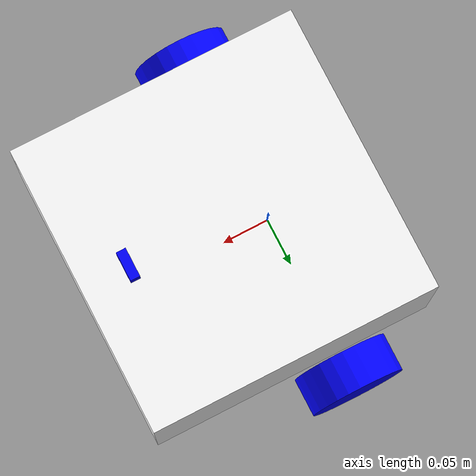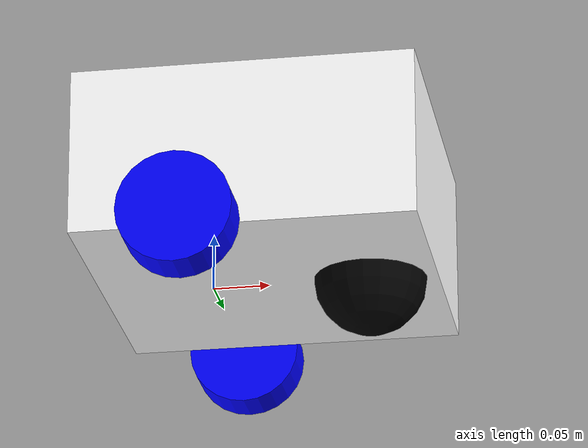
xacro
<?xml version="1.0"?>
<robot xmlns:xacro="http://www.ros.org/wiki/xacro" name="robot">

    <!-- Declare arguments -->
    <xacro:arg name="use_ros2_control" default="true"/>

    <!-- Include required files with correct filenames -->
    <xacro:include filename="robot_core.xacro"/>
    <xacro:include filename="gazebo_control.xacro"/>
    <xacro:include filename="camera.xacro"/>
    <xacro:include filename="inertial_macros.xacro"/>

</robot>

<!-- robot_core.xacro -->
<robot xmlns:xacro="http://www.ros.org/wiki/xacro">

    <xacro:include filename="inertial_macros.xacro"/>
     <material name="white">
        <color rgba="1 1 1 1"/>
     </material>

     <material name="orange">
        <color rgba="1 0.3 0.1 1"/>
     </material>

     <material name="blue">
        <color rgba="0 0 1 1"/>
     </material>

     <material name="black">
        <color rgba="0 0 0 1"/>
     </material>

     <material name="red">
        <color rgba="1.0 0.0 0.0 1.0"/>
     </material>

    <!--BASE LINK-->
     <link name= "base_link">

     </link>

     <joint name="base_footprint_joint" type="fixed">
        <parent link="base_link"/>
        <child link="base_footprint"/>
        <origin xyz="0 0 0" rpy="0 0 0"/>

    </joint>

    <link name="base_footprint">
    </link>

     <joint name="chasis_joint" type="fixed">
        <parent link="base_link"/>
        <child link="chasis"/>
        <origin xyz="-0.1 0 0"/>
     </joint>

     <link name="chasis">
        <visual>
            <origin xyz="0.15 0 0.075"/>
            <geometry>
                <box size="0.3 0.3 0.15"/>
            </geometry>
            <material name="white"/>
        </visual>
        <collision>
            <origin xyz="0.15 0 0.075"/>
            <geometry>
                <box size="0.3 0.3 0.15"/>
            </geometry>

        </collision>
        <xacro:inertial_box mass="0.5" x="0.3" y="0.3" z="0.15">
            <origin xyz="0.15 0 0.075" rpy="0 0 0"/>
        </xacro:inertial_box>
     </link>

     <gazebo reference="chasis">
        <material>Gazebo/white</material>
     </gazebo>

     <!--LEFT WHEEL LINK-->

     <joint name="left_wheel_joint" type="continuous">
        <parent link="base_link"/>
        <child link="left_wheel"/>
        <origin xyz="0 0.175 0" rpy="-${pi/2} 0 0"/>
        <axis xyz="0 0 1"/>
     </joint>

     <link name="left_wheel">
        <visual>
            <geometry>
                <cylinder radius="0.05" length="0.04"/>
            </geometry>
            <material name="blue"/>
        </visual>
        <collision>
            <geometry>
                <sphere radius="0.05"/>
            </geometry>
        </collision>
        <xacro:inertial_cylinder mass="0.1" length="0.04" radius="0.05">
            <origin xyz="0 0 0" rpy="0 0 0"/>
        </xacro:inertial_cylinder>

     </link>

     <gazebo reference="left_wheel">
        <material>Gazebo/Blue</material>
     </gazebo>

     <!--right WHEEL LINK-->

     <joint name="right_wheel_joint" type="continuous">
        <parent link="base_link"/>
        <child link="right_wheel"/>
        <origin xyz="0 -0.175 0" rpy="${pi/2} 0 0"/>
        <axis xyz="0 0 -1"/>
     </joint>

     <link name="right_wheel">
        <visual>
            <geometry>
                <cylinder radius="0.05" length="0.04"/>
            </geometry>
            <material name="blue"/>
        </visual>
        <collision>
            <geometry>
                <sphere radius="0.05"/>
            </geometry>

        </collision>
         <xacro:inertial_cylinder mass="0.1" length="0.04" radius="0.05">
            <origin xyz="0 0 0" rpy="0 0 0"/>
        </xacro:inertial_cylinder>

     </link>

     <gazebo reference="right_wheel">
        <material>Gazebo/Blue</material>
     </gazebo>

     <!--caster wheel link-->

     <joint name="caster_wheel_joint" type="fixed">
         <parent link="chasis"/>
         <child link="caster_wheel"/>
         <origin xyz="0.24 0 0"/>
    </joint>

    <link name="caster_wheel">
        <visual>
            <geometry>
                <sphere radius="0.05"/>
            </geometry>
            <material name="black"/>
        </visual>
         <collision>
            <geometry>
                <sphere radius="0.05"/>
            </geometry>

        </collision>
        <xacro:inertial_sphere mass="0.1" radius="0.05">
            <origin xyz="0 0 0" rpy="0 0 0"/>
        </xacro:inertial_sphere>
    </link>

    <gazebo reference="caster_wheel">
        <material>Gazebo/Black</material>
        <mu1 value="0.001"/>
        <mu2 value="0.01"/>
     </gazebo>
</robot>

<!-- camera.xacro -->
<robot xmlns:xacro="http://www.ros.org/wiki/xacro" >

    <joint name="camera_joint" type="fixed">
        <parent link="chasis"/>
        <child link="camera_link"/>
        <!-- Positioned to look directly down at the ground in front of the robot -->
        <origin xyz="0.25 0 0.15" rpy="${pi/2} 0 0"/>
    </joint>

    <link name="camera_link">
        <visual>
            <geometry>
                <box size="0.010 0.03 0.03"/>
            </geometry>
            <material name="blue"/>
        </visual>
    </link>

    <joint name="camera_optical_joint" type="fixed">
        <parent link="camera_link"/>
        <child link="camera_link_optical"/>
        <origin xyz="0 0 0" rpy="${-pi/2} 0 0"/>
    </joint>

    <link name="camera_link_optical"></link>

    <gazebo reference="camera_link">
        <material>Gazebo/Blue</material>

        <sensor name="camera" type="camera">
            <pose> 0 0 0 0 0 0 </pose>
            <visualize>true</visualize>
            <update_rate>30</update_rate>
            <camera>
                <!-- Narrower FOV to focus on the line with less distortion -->
                <horizontal_fov>0.8</horizontal_fov>
                <image>
                    <format>R8G8B8</format>
                    <width>640</width>
                    <height>480</height>
                </image>
                <clip>
                    <!-- Very close near clip to see the ground directly below -->
                    <near>0.005</near>
                    <!-- Short far clip since we only care about nearby ground -->
                    <far>0.5</far>
                </clip>
            </camera>
            <plugin name="camera_controller" filename="libgazebo_ros_camera.so">
                <frame_name>camera_link_optical</frame_name>
            </plugin>
        </sensor>
    </gazebo>
</robot>
